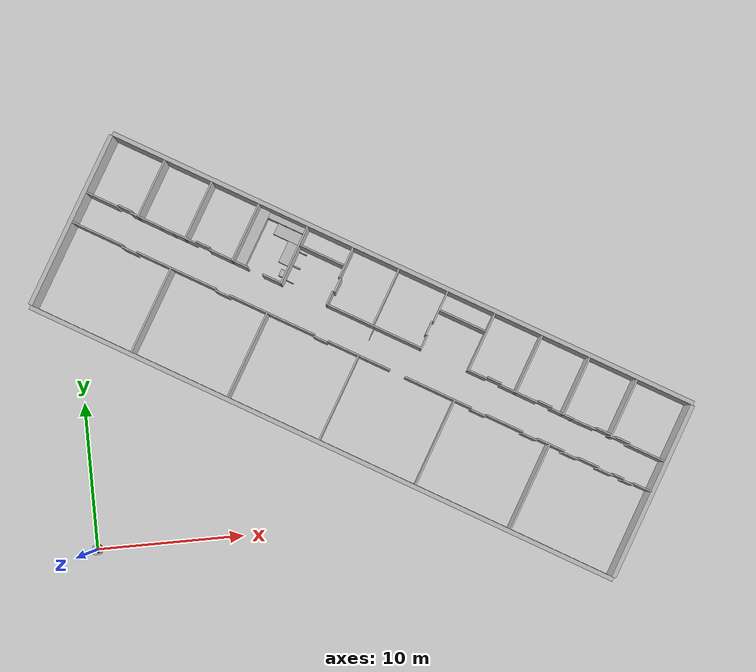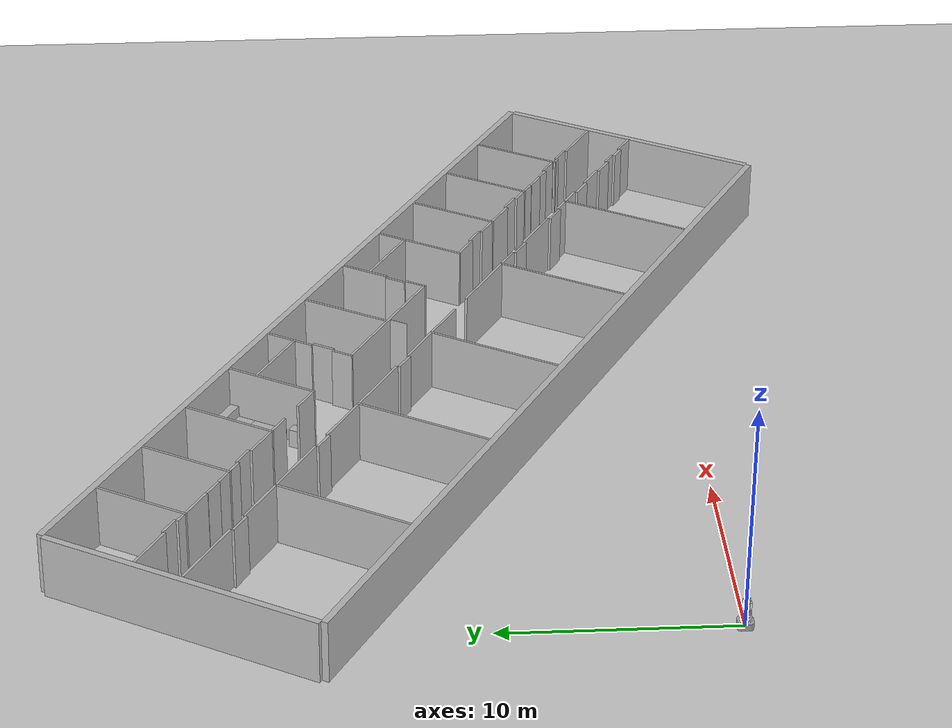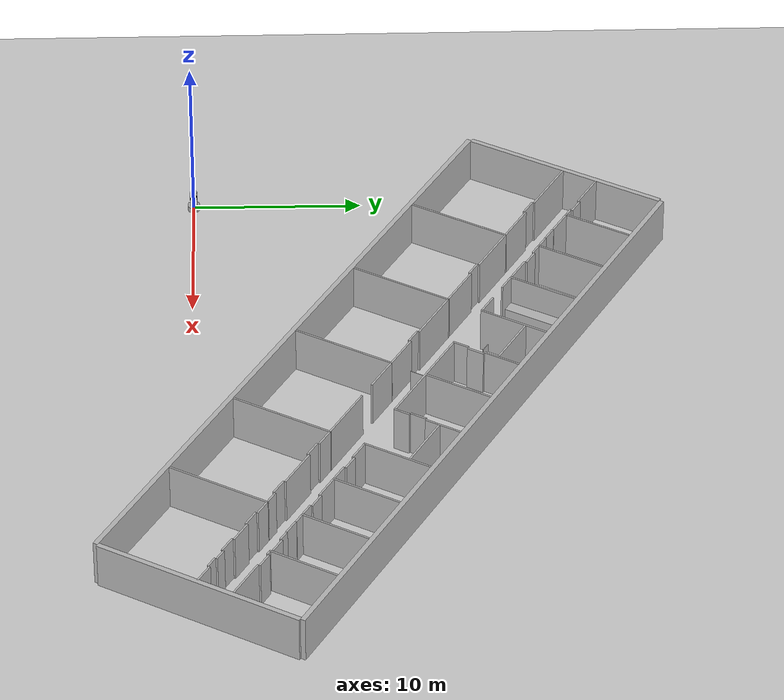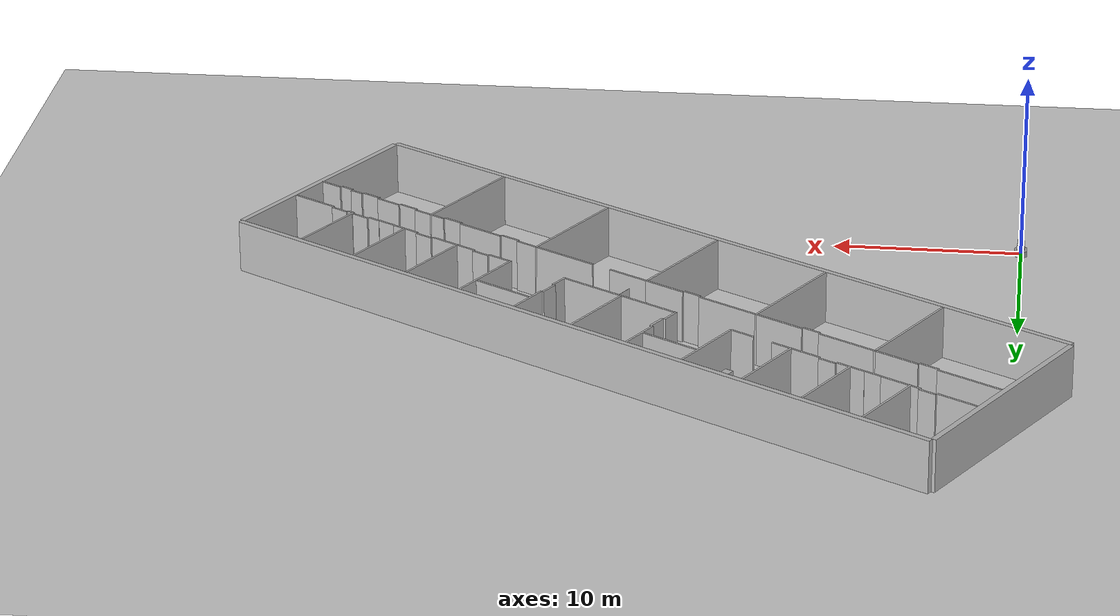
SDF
<?xml version="1.0" ?>
<sdf version="1.4">
  <world name="default">
    <include>
      <uri>model://ground_plane</uri>
    </include>
    <include>
      <uri>model://sun</uri>
    </include>
    <include>
      <uri>model://mild</uri>
    </include>
    <include>
      <uri>model://institut</uri>
      <pose>-2.566437 16.752702 0 0 0 -0.53</pose>
    </include>
  </world>
</sdf>

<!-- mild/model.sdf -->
<sdf version="1.4">
<model name="mild">

    <link name="base_link">
      <pose>0 0 0 0 0 0</pose>
      <inertial>
        <mass>5.67</mass>
        <inertia>
          <ixx>0.07</ixx>
          <iyy>0.08</iyy>
          <izz>0.10</izz>
          <ixy>0</ixy>
          <ixz>0</ixz>
          <iyz>0</iyz>
        </inertia>
      </inertial>
      <collision name="collision">
        <geometry>
         <cylinder>
            <radius>0.38</radius>
            <length>0.485</length>
          </cylinder>
        </geometry>
      </collision>
      <collision name="castor_collision">
        <pose>-0.200 0 -0.12 0 0 0</pose>
        <geometry>
          <sphere>
            <radius>0.04</radius>
          </sphere>
        </geometry>
        <surface>
          <friction>
            <ode>
              <mu>0</mu>
              <mu2>0</mu2>
              <slip1>1.0</slip1>
              <slip2>1.0</slip2>
            </ode>
          </friction>
        </surface>
      </collision>
      <visual name="visual">
        <pose>0 0 -0.2 0 0 -1.570796327</pose>
        <geometry>
        <mesh>
            <uri>model://mild/meshes/mild.dae</uri>
          </mesh>
        </geometry>
      </visual>
     <sensor name="laser" type="ray">
        <pose>0.39 0 -0.12 0 0 0</pose>
        <visualize>1</visualize>
        <ray>
          <scan>
            <horizontal>
              <samples>180</samples>
              <resolution>1.000000</resolution>
              <min_angle>-1.570796327</min_angle>
              <max_angle>1.570796327</max_angle>
            </horizontal>
          </scan>
          <range>
            <min>0.080000</min>
            <max>10</max>
            <resolution>0.010000</resolution>
          </range>
        </ray>

        <plugin name='laser_controller' filename='libgazebo_ros_laser.so'>
          <gaussianNoise>0.005</gaussianNoise>
          <alwaysOn>1</alwaysOn>
          <updateRate>20</updateRate>
          <topicName>scan</topicName>
          <frameName>base_laser</frameName>
        </plugin>
        <update_rate>20</update_rate>
      </sensor>
    </link>

</model>
</sdf>

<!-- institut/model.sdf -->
<sdf version="1.4">
<model name="institut">

    <link name="wall01">
     <pose>21.4 -0.15 1.4 0 0 0</pose>
     <gravity>false</gravity>
      <collision name="collision">
         <geometry>
            <box>
            <size>43.02 0.3 2.8</size>
            </box>
          </geometry>
       </collision>
       <visual name="visual">
           <geometry>
               <box>
            <size>43.02 0.3 2.8</size>
            </box>
          </geometry>
         </visual>
    </link>

     <link name="wall02">
      <gravity>false</gravity>
     <pose>-0.15 6.325 1.4 0 0 0</pose>
      <collision name="collision">
         <geometry>
            <box>
            <size>0.3 12.65 2.8</size>
            </box>
          </geometry>
       </collision>
       <visual name="visual">
           <geometry>
               <box>
            <size>0.3 12.65 2.8</size>
            </box>
          </geometry>
         </visual>
    </link>

    <link name="wall03">
     <gravity>false</gravity>
     <pose>21.4 12.8 1.4 0 0 0</pose>
      <collision name="collision">
         <geometry>
            <box>
            <size>43.02 0.3 2.8</size>
            </box>
          </geometry>
       </collision>
       <visual name="visual">
           <geometry>
               <box>
            <size>43.02 0.3 2.8</size>
            </box>
          </geometry>
         </visual>
    </link>

     <link name="wall04">
      <gravity>false</gravity>
     <pose>42.9 6.325 1.4 0 0 0</pose>
      <collision name="collision">
         <geometry>
            <box>
            <size>0.3 12.65 2.8</size>
            </box>
          </geometry>
       </collision>
       <visual name="visual">
           <geometry>
               <box>
            <size>0.3 12.65 2.8</size>
            </box>
          </geometry>
         </visual>
    </link>

    <link name="wall05">
      <gravity>true</gravity>
     <pose>3.8425 10.525 1.4 0 0 0</pose>
      <collision name="collision">
         <geometry>
            <box>
            <size>0.11 4.25 2.8</size>
            </box>
          </geometry>
       </collision>
       <visual name="visual">
           <geometry>
               <box>
            <size>0.11 4.25 2.8</size>
            </box>
          </geometry>
         </visual>
    </link>

     <link name="wall06">
      <gravity>true</gravity>
     <pose>7.3425 10.525 1.4 0 0 0</pose>
      <collision name="collision">
         <geometry>
            <box>
            <size>0.11 4.25 2.8</size>
            </box>
          </geometry>
       </collision>
       <visual name="visual">
           <geometry>
               <box>
            <size>0.11 4.25 2.8</size>
            </box>
          </geometry>
         </visual>
    </link>

     <link name="wall07">
      <gravity>true</gravity>
     <pose>10.8425 10.525 1.4 0 0 0</pose>
      <collision name="collision">
         <geometry>
            <box>
            <size>0.11 4.25 2.8</size>
            </box>
          </geometry>
       </collision>
       <visual name="visual">
           <geometry>
               <box>
            <size>0.11 4.25 2.8</size>
            </box>
          </geometry>
         </visual>
    </link>

    <link name="wall08">
      <gravity>true</gravity>
     <pose>14.4575 10.525 1.4 0 0 0</pose>
      <collision name="collision">
         <geometry>
            <box>
             <size>0.11 4.25 2.8</size>
            </box>
          </geometry>
       </collision>
       <visual name="visual">
           <geometry>
               <box>
            <size>0.11 4.25 2.8</size>
            </box>
          </geometry>
         </visual>
    </link>

    <link name="wall09">
      <gravity>true</gravity>
     <pose>17.8425 11.54 1.4 0 0 0</pose>
      <collision name="collision">
         <geometry>
            <box>
            <size>0.11 2.24 2.8</size>
            </box>
          </geometry>
       </collision>
       <visual name="visual">
           <geometry>
               <box>
            <size>0.11 2.24 2.8</size>
            </box>
          </geometry>
         </visual>
    </link>

     <link name="wall091">
      <gravity>true</gravity>
     <pose>17.9625 9.92 1.4 0 0 0</pose>
      <collision name="collision">
         <geometry>
            <box>
            <size>0.13 1.05 2.8</size>
            </box>
          </geometry>
       </collision>
       <visual name="visual">
           <geometry>
               <box>
            <size>0.13 1.05 2.8</size>
            </box>
          </geometry>
         </visual>
    </link>

     <link name="wall092">
      <gravity>true</gravity>
     <pose>17.8425 8.9 1.4 0 0 0</pose>
      <collision name="collision">
         <geometry>
            <box>
            <size>0.11 1 2.8</size>
            </box>
          </geometry>
       </collision>
       <visual name="visual">
           <geometry>
               <box>
            <size>0.11 1 2.8</size>
            </box>
          </geometry>
         </visual>
    </link>

    <link name="wall101">
      <gravity>true</gravity>
     <pose>24.8425 8.9 1.4 0 0 0</pose>
      <collision name="collision">
         <geometry>
            <box>
            <size>0.11 1 2.8</size>
            </box>
          </geometry>
       </collision>
       <visual name="visual">
           <geometry>
               <box>
             <size>0.11 1 2.8</size>
            </box>
          </geometry>
         </visual>
    </link>

    <link name="wall102">
      <gravity>true</gravity>
     <pose>24.7325 9.9 1.4 0 0 0</pose>
      <collision name="collision">
         <geometry>
            <box>
            <size>0.11 1 2.8</size>
            </box>
          </geometry>
       </collision>
       <visual name="visual">
           <geometry>
               <box>
             <size>0.11 1 2.8</size>
            </box>
          </geometry>
         </visual>
    </link>

    <link name="wall103">
      <gravity>true</gravity>
     <pose>24.8425 11.525 1.4 0 0 0</pose>
      <collision name="collision">
         <geometry>
            <box>
            <size>0.11 2.25 2.8</size>
            </box>
          </geometry>
       </collision>
       <visual name="visual">
           <geometry>
               <box>
             <size>0.11 2.25 2.8</size>
            </box>
          </geometry>
         </visual>
    </link>

    <link name="wall11">
      <gravity>true</gravity>
     <pose>28.3425 10.525 1.4 0 0 0</pose>
      <collision name="collision">
         <geometry>
            <box>
            <size>0.11 4.25 2.8</size>
            </box>
          </geometry>
       </collision>
       <visual name="visual">
           <geometry>
               <box>
            <size>0.11 4.25 2.8</size>
            </box>
          </geometry>
         </visual>
    </link>

     <link name="wall12">
      <gravity>true</gravity>
     <pose>16.15 11.305 1.4 0 0 0</pose>
      <collision name="collision">
         <geometry>
            <box>
            <size>3.275 0.11 2.8</size>
            </box>
          </geometry>
       </collision>
       <visual name="visual">
           <geometry>
               <box>
            <size>3.275 0.11 2.8</size>
            </box>
          </geometry>
         </visual>
    </link>

     <link name="wall121">
      <gravity>true</gravity>
     <pose>14.7875 11.035 0.255 0 0 0</pose>
      <collision name="collision">
         <geometry>
            <box>
            <size>0.55 0.04 0.51</size>
            </box>
          </geometry>
       </collision>
       <visual name="visual">
           <geometry>
               <box>
            <size>0.55 0.04 0.51</size>
            </box>
          </geometry>
         </visual>
    </link>

    <link name="wall122">
      <gravity>true</gravity>
     <pose>14.7875 10.0 0.255 0 0 0</pose>
      <collision name="collision">
         <geometry>
            <box>
            <size>0.55 0.08 0.51</size>
            </box>
          </geometry>
       </collision>
       <visual name="visual">
           <geometry>
               <box>
            <size>0.55 0.08 0.51</size>
            </box>
          </geometry>
         </visual>
    </link>

    <link name="wall123">
      <gravity>true</gravity>
     <pose>14.7875 8.9 0.255 0 0 0</pose>
      <collision name="collision">
         <geometry>
            <box>
            <size>0.55 0.04 0.51</size>
            </box>
          </geometry>
       </collision>
       <visual name="visual">
           <geometry>
               <box>
            <size>0.55 0.04 0.51</size>
            </box>
          </geometry>
         </visual>
    </link>

    <link name="wall13">
      <gravity>true</gravity>
     <pose>21.3425 8.455 1.4 0 0 0</pose>
      <collision name="collision">
         <geometry>
            <box>
            <size>6.89 0.11 2.8</size>
            </box>
          </geometry>
       </collision>
       <visual name="visual">
           <geometry>
               <box>
            <size>6.89 0.11 2.8</size>
            </box>
          </geometry>
         </visual>
    </link>

      <link name="wall141">
      <gravity>true</gravity>
     <pose>1.15 8.455 1.4 0 0 0</pose>
      <collision name="collision">
         <geometry>
            <box>
            <size>2.3 0.11 2.8</size>
            </box>
          </geometry>
       </collision>
       <visual name="visual">
           <geometry>
               <box>
            <size>2.3 0.11 2.8</size>
            </box>
          </geometry>
         </visual>
    </link>

    <link name="wall142">
      <gravity>true</gravity>
     <pose>2.8 8.565 1.4 0 0 0</pose>
      <collision name="collision">
         <geometry>
            <box>
            <size>1 0.11 2.8</size>
            </box>
          </geometry>
       </collision>
       <visual name="visual">
           <geometry>
               <box>
            <size>1 0.11 2.8</size>
            </box>
          </geometry>
         </visual>
    </link>

     <link name="wall143">
      <gravity>true</gravity>
     <pose>3.51625 8.455 1.4 0 0 0</pose>
      <collision name="collision">
         <geometry>
            <box>
            <size>0.4325 0.11 2.8</size>
            </box>
          </geometry>
       </collision>
       <visual name="visual">
           <geometry>
               <box>
            <size>0.5425 0.11 2.8</size>
            </box>
          </geometry>
         </visual>
    </link>

    <link name="wall151">
      <gravity>true</gravity>
     <pose>4.715 8.455 1.4 0 0 0</pose>
      <collision name="collision">
         <geometry>
            <box>
            <size>1.635 0.11 2.8</size>
            </box>
          </geometry>
       </collision>
       <visual name="visual">
           <geometry>
               <box>
            <size>1.635 0.11 2.8</size>
            </box>
          </geometry>
         </visual>
    </link>

    <link name="wall152">
      <gravity>true</gravity>
     <pose>6.0075 8.440 1.4 0 0 0</pose>
      <collision name="collision">
         <geometry>
            <box>
            <size>0.95 0.11 2.8</size>
            </box>
          </geometry>
       </collision>
       <visual name="visual">
           <geometry>
               <box>
            <size>0.95 0.11 2.8</size>
            </box>
          </geometry>
         </visual>
    </link>

     <link name="wall153">
      <gravity>true</gravity>
     <pose>6.885 8.455 1.4 0 0 0</pose>
      <collision name="collision">
         <geometry>
            <box>
            <size>0.805 0.11 2.8</size>
            </box>
          </geometry>
       </collision>
       <visual name="visual">
           <geometry>
               <box>
            <size>0.805 0.11 2.8</size>
            </box>
          </geometry>
         </visual>
    </link>

    <link name="wall161">
      <gravity>true</gravity>
     <pose>7.755 8.455 1.4 0 0 0</pose>
      <collision name="collision">
         <geometry>
            <box>
            <size>0.715 0.11 2.8</size>
            </box>
          </geometry>
       </collision>
       <visual name="visual">
           <geometry>
               <box>
            <size>0.715 0.11 2.8</size>
            </box>
          </geometry>
         </visual>
    </link>

    <link name="wall162">
      <gravity>true</gravity>
     <pose>8.6125 8.565 1.4 0 0 0</pose>
      <collision name="collision">
         <geometry>
            <box>
            <size>1 0.11 2.8</size>
            </box>
          </geometry>
       </collision>
       <visual name="visual">
           <geometry>
               <box>
            <size>1 0.11 2.8</size>
            </box>
          </geometry>
         </visual>
    </link>

     <link name="wall163">
      <gravity>true</gravity>
     <pose>9.95 8.455 1.4 0 0 0</pose>
      <collision name="collision">
         <geometry>
            <box>
            <size>1.675 0.11 2.8</size>
            </box>
          </geometry>
       </collision>
       <visual name="visual">
           <geometry>
               <box>
            <size>1.675 0.11 2.8</size>
            </box>
          </geometry>
         </visual>
    </link>

    <link name="wall171">
      <gravity>true</gravity>
     <pose>13.7375 8.455 1.4 0 0 0</pose>
      <collision name="collision">
         <geometry>
            <box>
            <size>1.33 0.11 2.8</size>
            </box>
          </geometry>
       </collision>
       <visual name="visual">
           <geometry>
               <box>
            <size>1.33 0.11 2.8</size>
            </box>
          </geometry>
         </visual>
    </link>

     <link name="wall172">
      <gravity>true</gravity>
     <pose>11.435 8.455 1.4 0 0 0</pose>
      <collision name="collision">
         <geometry>
            <box>
            <size>1.075 0.11 2.8</size>
            </box>
          </geometry>
       </collision>
       <visual name="visual">
           <geometry>
               <box>
            <size>1.075 0.11 2.8</size>
            </box>
          </geometry>
         </visual>
    </link>

     <link name="wall18">
      <gravity>true</gravity>
     <pose>31.8375 10.525 1.4 0 0 0</pose>
      <collision name="collision">
         <geometry>
            <box>
            <size>0.11 4.25 2.8</size>
            </box>
          </geometry>
       </collision>
       <visual name="visual">
           <geometry>
               <box>
            <size>0.11 4.25 2.8</size>
            </box>
          </geometry>
         </visual>
    </link>

    <link name="wall19">
      <gravity>true</gravity>
     <pose>35.3325 10.525 1.4 0 0 0</pose>
      <collision name="collision">
         <geometry>
            <box>
            <size>0.11 4.25 2.8</size>
            </box>
          </geometry>
       </collision>
       <visual name="visual">
           <geometry>
               <box>
            <size>0.11 4.25 2.8</size>
            </box>
          </geometry>
         </visual>
    </link>

     <link name="wall20">
      <gravity>true</gravity>
     <pose>38.8275 10.525 1.4 0 0 0</pose>
      <collision name="collision">
         <geometry>
            <box>
            <size>0.11 4.25 2.8</size>
            </box>
          </geometry>
       </collision>
       <visual name="visual">
           <geometry>
               <box>
            <size>0.11 4.25 2.8</size>
            </box>
          </geometry>
         </visual>
    </link>

     <link name="wall21">
      <gravity>true</gravity>
     <pose>26.595 11.305 1.4 0 0 0</pose>
      <collision name="collision">
         <geometry>
            <box>
            <size>3.385 0.11 2.8</size>
            </box>
          </geometry>
       </collision>
       <visual name="visual">
           <geometry>
               <box>
            <size>3.385 0.11 2.8</size>
            </box>
          </geometry>
         </visual>
    </link>

    <link name="wall221">
      <gravity>true</gravity>
     <pose>29.0425 8.455 1.4 0 0 0</pose>
      <collision name="collision">
         <geometry>
            <box>
            <size>1.3 0.11 2.8</size>
            </box>
          </geometry>
       </collision>
       <visual name="visual">
           <geometry>
               <box>
            <size>1.3 0.11 2.8</size>
            </box>
          </geometry>
         </visual>
    </link>

    <link name="wall222">
      <gravity>true</gravity>
     <pose>30.1925 8.565 1.4 0 0 0</pose>
      <collision name="collision">
         <geometry>
            <box>
            <size>1 0.11 2.8</size>
            </box>
          </geometry>
       </collision>
       <visual name="visual">
           <geometry>
               <box>
            <size>1 0.11 2.8</size>
            </box>
          </geometry>
         </visual>
    </link>

     <link name="wall223">
      <gravity>true</gravity>
     <pose>31.2375 8.455 1.4 0 0 0</pose>
      <collision name="collision">
         <geometry>
            <box>
            <size>1.09 0.11 2.8</size>
            </box>
          </geometry>
       </collision>
       <visual name="visual">
           <geometry>
               <box>
            <size>1.09 0.11 2.8</size>
            </box>
          </geometry>
         </visual>
    </link>

    <link name="wall231">
      <gravity>true</gravity>
     <pose>32.6675 8.455 1.4 0 0 0</pose>
      <collision name="collision">
         <geometry>
            <box>
            <size>1.56 0.11 2.8</size>
            </box>
          </geometry>
       </collision>
       <visual name="visual">
           <geometry>
               <box>
            <size>1.56 0.11 2.8</size>
            </box>
          </geometry>
         </visual>
    </link>

    <link name="wall232">
      <gravity>true</gravity>
     <pose>33.9475 8.565 1.4 0 0 0</pose>
      <collision name="collision">
         <geometry>
            <box>
            <size>1 0.11 2.8</size>
            </box>
          </geometry>
       </collision>
       <visual name="visual">
           <geometry>
               <box>
            <size>1 0.11 2.8</size>
            </box>
          </geometry>
         </visual>
    </link>

    <link name="wall233">
      <gravity>true</gravity>
     <pose>34.8625 8.455 1.4 0 0 0</pose>
      <collision name="collision">
         <geometry>
            <box>
            <size>0.83 0.11 2.8</size>
            </box>
          </geometry>
       </collision>
       <visual name="visual">
           <geometry>
               <box>
            <size>0.83 0.11 2.8</size>
            </box>
          </geometry>
         </visual>
    </link>

    <link name="wall241">
      <gravity>true</gravity>
     <pose>35.7125 8.455 1.4 0 0 0</pose>
      <collision name="collision">
         <geometry>
            <box>
            <size>0.66 0.11 2.8</size>
            </box>
          </geometry>
       </collision>
       <visual name="visual">
           <geometry>
               <box>
            <size>0.66 0.11 2.8</size>
            </box>
          </geometry>
         </visual>
    </link>

     <link name="wall242">
      <gravity>true</gravity>
     <pose>36.5425 8.435 1.4 0 0 0</pose>
      <collision name="collision">
         <geometry>
            <box>
            <size>1 0.11 2.8</size>
            </box>
          </geometry>
       </collision>
       <visual name="visual">
           <geometry>
               <box>
            <size>1 0.11 2.8</size>
            </box>
          </geometry>
         </visual>
    </link>

     <link name="wall243">
      <gravity>true</gravity>
     <pose>37.3925 8.455 1.4 0 0 0</pose>
      <collision name="collision">
         <geometry>
            <box>
            <size>0.7 0.11 2.8</size>
            </box>
          </geometry>
       </collision>
       <visual name="visual">
           <geometry>
               <box>
            <size>0.7 0.11 2.8</size>
            </box>
          </geometry>
         </visual>
    </link>

    <link name="wall244">
      <gravity>true</gravity>
     <pose>38.2425 8.565 1.4 0 0 0</pose>
      <collision name="collision">
         <geometry>
            <box>
            <size>1 0.11 2.8</size>
            </box>
          </geometry>
       </collision>
       <visual name="visual">
           <geometry>
               <box>
            <size>1 0.11 2.8</size>
            </box>
          </geometry>
         </visual>
    </link>

     <link name="wall245">
      <gravity>true</gravity>
     <pose>38.7575 8.565 1.4 0 0 0</pose>
      <collision name="collision">
         <geometry>
            <box>
            <size>0.03 0.11 2.8</size>
            </box>
          </geometry>
       </collision>
       <visual name="visual">
           <geometry>
               <box>
            <size>0.03 0.11 2.8</size>
            </box>
          </geometry>
         </visual>
    </link>

      <link name="wall251">
      <gravity>true</gravity>
     <pose>41.46 8.455 1.4 0 0 0</pose>
      <collision name="collision">
         <geometry>
            <box>
            <size>2.6 0.11 2.8</size>
            </box>
          </geometry>
       </collision>
       <visual name="visual">
           <geometry>
               <box>
            <size>2.6 0.11 2.8</size>
            </box>
          </geometry>
         </visual>
    </link>

     <link name="wall252">
      <gravity>true</gravity>
     <pose>39.66 8.565 1.4 0 0 0</pose>
      <collision name="collision">
         <geometry>
            <box>
            <size>1 0.11 2.8</size>
            </box>
          </geometry>
       </collision>
       <visual name="visual">
           <geometry>
               <box>
            <size>1 0.11 2.8</size>
            </box>
          </geometry>
         </visual>
    </link>

    <link name="wall253">
      <gravity>true</gravity>
     <pose>39.01875 8.455 1.4 0 0 0</pose>
      <collision name="collision">
         <geometry>
            <box>
            <size>0.2825 0.11 2.8</size>
            </box>
          </geometry>
       </collision>
       <visual name="visual">
           <geometry>
               <box>
            <size>0.2825 0.11 2.8</size>
            </box>
          </geometry>
         </visual>
    </link>

    <link name="wall261">
      <gravity>true</gravity>
     <pose>1.85 6.245 1.4 0 0 0</pose>
      <collision name="collision">
         <geometry>
            <box>
            <size>3.7 0.11 2.8</size>
            </box>
          </geometry>
       </collision>
       <visual name="visual">
           <geometry>
               <box>
            <size>3.7 0.11 2.8</size>
            </box>
          </geometry>
         </visual>
    </link>

    <link name="wall262">
      <gravity>true</gravity>
     <pose>4.25 6.135 1.4 0 0 0</pose>
      <collision name="collision">
         <geometry>
            <box>
            <size>1.1 0.11 2.8</size>
            </box>
          </geometry>
       </collision>
       <visual name="visual">
           <geometry>
               <box>
            <size>1.1 0.11 2.8</size>
            </box>
          </geometry>
         </visual>
    </link>

    <link name="wall263">
      <gravity>true</gravity>
     <pose>6.06875 6.245 1.4 0 0 0</pose>
      <collision name="collision">
         <geometry>
            <box>
            <size>2.5375 0.11 2.8</size>
            </box>
          </geometry>
       </collision>
       <visual name="visual">
           <geometry>
               <box>
            <size>2.5375 0.11 2.8</size>
            </box>
          </geometry>
         </visual>
    </link>

      <link name="wall27">
      <gravity>true</gravity>
     <pose>7.3425 3.15 1.4 0 0 0</pose>
      <collision name="collision">
         <geometry>
            <box>
            <size>0.11 6.3 2.8</size>
            </box>
          </geometry>
       </collision>
       <visual name="visual">
           <geometry>
               <box>
            <size>0.11 6.3 2.8</size>
            </box>
          </geometry>
         </visual>
    </link>

      <link name="wall28">
      <gravity>true</gravity>
     <pose>14.4575 3.15 1.4 0 0 0</pose>
      <collision name="collision">
         <geometry>
            <box>
             <size>0.11 6.3 2.8</size>
            </box>
          </geometry>
       </collision>
       <visual name="visual">
           <geometry>
               <box>
            <size>0.11 6.3 2.8</size>
            </box>
          </geometry>
         </visual>
    </link>

    <link name="wall291">
      <gravity>true</gravity>
     <pose>9.0225 6.245 1.4 0 0 0</pose>
      <collision name="collision">
         <geometry>
            <box>
            <size>3.2875 0.11 2.8</size>
            </box>
          </geometry>
       </collision>
       <visual name="visual">
           <geometry>
               <box>
            <size>3.2875 0.11 2.8</size>
            </box>
          </geometry>
         </visual>
    </link>

    <link name="wall292">
      <gravity>true</gravity>
     <pose>11.16625 6.135 1.4 0 0 0</pose>
      <collision name="collision">
         <geometry>
            <box>
            <size>1 0.11 2.8</size>
            </box>
          </geometry>
       </collision>
       <visual name="visual">
           <geometry>
               <box>
            <size>1 0.11 2.8</size>
            </box>
          </geometry>
         </visual>
    </link>

     <link name="wall293">
      <gravity>true</gravity>
     <pose>13.04125 6.245 1.4 0 0 0</pose>
      <collision name="collision">
         <geometry>
            <box>
            <size>2.75 0.11 2.8</size>
            </box>
          </geometry>
       </collision>
       <visual name="visual">
           <geometry>
               <box>
            <size>2.75 0.11 2.8</size>
            </box>
          </geometry>
         </visual>
    </link>

    <link name="wall30">
      <gravity>true</gravity>
     <pose>21.245 3.15 1.4 0 0 0</pose>
      <collision name="collision">
         <geometry>
            <box>
             <size>0.11 6.3 2.8</size>
            </box>
          </geometry>
       </collision>
       <visual name="visual">
           <geometry>
               <box>
            <size>0.11 6.3 2.8</size>
            </box>
          </geometry>
         </visual>
    </link>

     <link name="wall31">
      <gravity>true</gravity>
     <pose>28.3425 3.15 1.4 0 0 0</pose>
      <collision name="collision">
         <geometry>
            <box>
             <size>0.11 6.3 2.8</size>
            </box>
          </geometry>
       </collision>
       <visual name="visual">
           <geometry>
               <box>
            <size>0.11 6.3 2.8</size>
            </box>
          </geometry>
         </visual>
    </link>

     <link name="wall32">
      <gravity>true</gravity>
     <pose>35.3325 3.15 1.4 0 0 0</pose>
      <collision name="collision">
         <geometry>
            <box>
             <size>0.11 6.3 2.8</size>
            </box>
          </geometry>
       </collision>
       <visual name="visual">
           <geometry>
               <box>
            <size>0.11 6.3 2.8</size>
            </box>
          </geometry>
         </visual>
    </link>

    <link name="wall331">
      <gravity>true</gravity>
     <pose>16.225 6.245 1.4 0 0 0</pose>
      <collision name="collision">
         <geometry>
            <box>
            <size>3.4775 0.11 2.8</size>
            </box>
          </geometry>
       </collision>
       <visual name="visual">
           <geometry>
               <box>
            <size>3.4775 0.11 2.8</size>
            </box>
          </geometry>
         </visual>
    </link>

     <link name="wall332">
      <gravity>true</gravity>
     <pose>20.11875 6.245 1.4 0 0 0</pose>
      <collision name="collision">
         <geometry>
            <box>
            <size>2.31 0.11 2.8</size>
            </box>
          </geometry>
       </collision>
       <visual name="visual">
           <geometry>
               <box>
            <size>2.31 0.11 2.8</size>
            </box>
          </geometry>
         </visual>
    </link>

    <link name="wall333">
      <gravity>true</gravity>
     <pose>18.46375 6.135 1.4 0 0 0</pose>
      <collision name="collision">
         <geometry>
            <box>
            <size>1 0.11 2.8</size>
            </box>
          </geometry>
       </collision>
       <visual name="visual">
           <geometry>
               <box>
            <size>1 0.11 2.8</size>
            </box>
          </geometry>
         </visual>
    </link>

    <link name="wall341">
      <gravity>true</gravity>
     <pose>22.42625 6.245 1.4 0 0 0</pose>
      <collision name="collision">
         <geometry>
            <box>
            <size>2.275 0.11 2.8</size>
            </box>
          </geometry>
       </collision>
       <visual name="visual">
           <geometry>
               <box>
            <size>2.275 0.11 2.8</size>
            </box>
          </geometry>
         </visual>
    </link>

    <link name="wall343">
      <gravity>true</gravity>
     <pose>26.495 6.245 1.4 0 0 0</pose>
      <collision name="collision">
         <geometry>
            <box>
            <size>3.6625 0.11 2.8</size>
            </box>
          </geometry>
       </collision>
       <visual name="visual">
           <geometry>
               <box>
            <size>3.6625 0.11 2.8</size>
            </box>
          </geometry>
         </visual>
    </link>

    <link name="wall351">
      <gravity>true</gravity>
     <pose>28.98125 6.245 1.4 0 0 0</pose>
      <collision name="collision">
         <geometry>
            <box>
            <size>1.2 0.11 2.8</size>
            </box>
          </geometry>
       </collision>
       <visual name="visual">
           <geometry>
               <box>
            <size>1.2 0.11 2.8</size>
            </box>
          </geometry>
         </visual>
    </link>

     <link name="wall352">
      <gravity>true</gravity>
     <pose>30.13125 6.135 1.4 0 0 0</pose>
      <collision name="collision">
         <geometry>
            <box>
            <size>1.1 0.11 2.8</size>
            </box>
          </geometry>
       </collision>
       <visual name="visual">
           <geometry>
               <box>
            <size>1.1 0.11 2.8</size>
            </box>
          </geometry>
         </visual>
    </link>

    <link name="wall353">
      <gravity>true</gravity>
     <pose>32.02125 6.245 1.4 0 0 0</pose>
      <collision name="collision">
         <geometry>
            <box>
            <size>2.68 0.11 2.8</size>
            </box>
          </geometry>
       </collision>
       <visual name="visual">
           <geometry>
               <box>
            <size>2.68 0.11 2.8</size>
            </box>
          </geometry>
         </visual>
    </link>

    <link name="wall354">
      <gravity>true</gravity>
     <pose>33.91125 6.135 1.4 0 0 0</pose>
      <collision name="collision">
         <geometry>
            <box>
            <size>1.1 0.11 2.8</size>
            </box>
          </geometry>
       </collision>
       <visual name="visual">
           <geometry>
               <box>
            <size>1.1 0.11 2.8</size>
            </box>
          </geometry>
         </visual>
    </link>

     <link name="wall355">
      <gravity>true</gravity>
     <pose>34.88125 6.245 1.4 0 0 0</pose>
      <collision name="collision">
         <geometry>
            <box>
            <size>0.84 0.11 2.8</size>
            </box>
          </geometry>
       </collision>
       <visual name="visual">
           <geometry>
               <box>
            <size>0.84 0.11 2.8</size>
            </box>
          </geometry>
         </visual>
    </link>

    <link name="wall361">
      <gravity>true</gravity>
     <pose>42.17625 6.245 1.4 0 0 0</pose>
      <collision name="collision">
         <geometry>
            <box>
            <size>1.27 0.11 2.8</size>
            </box>
          </geometry>
       </collision>
       <visual name="visual">
           <geometry>
               <box>
            <size>1.27 0.11 2.8</size>
            </box>
          </geometry>
         </visual>
    </link>

    <link name="wall362">
      <gravity>true</gravity>
     <pose>41.16625 6.135 1.4 0 0 0</pose>
      <collision name="collision">
         <geometry>
            <box>
            <size>0.75 0.11 2.8</size>
            </box>
          </geometry>
       </collision>
       <visual name="visual">
           <geometry>
               <box>
            <size>0.75 0.11 2.8</size>
            </box>
          </geometry>
         </visual>
    </link>

     <link name="wall363">
      <gravity>true</gravity>
     <pose>40.42125 6.245 1.4 0 0 0</pose>
      <collision name="collision">
         <geometry>
            <box>
            <size>0.74 0.11 2.8</size>
            </box>
          </geometry>
       </collision>
       <visual name="visual">
           <geometry>
               <box>
            <size>0.74 0.11 2.8</size>
            </box>
          </geometry>
         </visual>
    </link>

     <link name="wall364">
      <gravity>true</gravity>
     <pose>39.50125 6.135 1.4 0 0 0</pose>
      <collision name="collision">
         <geometry>
            <box>
            <size>1.1 0.11 2.8</size>
            </box>
          </geometry>
       </collision>
       <visual name="visual">
           <geometry>
               <box>
            <size>1.1 0.11 2.8</size>
            </box>
          </geometry>
         </visual>
    </link>

    <link name="wall365">
      <gravity>true</gravity>
     <pose>38.22625 6.245 1.4 0 0 0</pose>
      <collision name="collision">
         <geometry>
            <box>
            <size>1.45 0.11 2.8</size>
            </box>
          </geometry>
       </collision>
       <visual name="visual">
           <geometry>
               <box>
            <size>1.45 0.11 2.8</size>
            </box>
          </geometry>
         </visual>
    </link>

     <link name="wall366">
      <gravity>true</gravity>
     <pose>36.95125 6.135 1.4 0 0 0</pose>
      <collision name="collision">
         <geometry>
            <box>
            <size>1.1 0.11 2.8</size>
            </box>
          </geometry>
       </collision>
       <visual name="visual">
           <geometry>
               <box>
            <size>1.1 0.11 2.8</size>
            </box>
          </geometry>
         </visual>
    </link>

    <link name="wall367">
      <gravity>true</gravity>
     <pose>35.8825 6.245 1.4 0 0 0</pose>
      <collision name="collision">
         <geometry>
            <box>
            <size>1.0375 0.11 2.8</size>
            </box>
          </geometry>
       </collision>
       <visual name="visual">
           <geometry>
               <box>
            <size>1.0375 0.11 2.8</size>
            </box>
          </geometry>
         </visual>
    </link>

    <link name="wall37">
      <gravity>true</gravity>
     <pose>21.4 8 1.4 0 0 0</pose>
      <collision name="collision">
         <geometry>
            <box>
             <size>0.01 0.89 2.8</size>
            </box>
          </geometry>
       </collision>
       <visual name="visual">
           <geometry>
               <box>
            <size>0.01 0.89 2.8</size>
            </box>
          </geometry>
         </visual>
    </link>
    <link name="wall38">
      <gravity>true</gravity>
     <pose>21.245 10.580 1.4 0 0 0</pose>
      <collision name="collision">
         <geometry>
            <box>
            <size>0.11 4.14 2.8</size>
            </box>
          </geometry>
       </collision>
       <visual name="visual">
           <geometry>
               <box>
            <size>0.11 4.14 2.8</size>
            </box>
          </geometry>
         </visual>
    </link>

    <link name="wall39">
      <gravity>true</gravity>
     <pose>11.2675 10.580 0.5 0 0 0</pose>
      <collision name="collision">
         <geometry>
            <box>
            <size>0.74 4.14 1</size>
            </box>
          </geometry>
       </collision>
       <visual name="visual">
           <geometry>
               <box>
            <size>0.74 4.14 1</size>
            </box>
          </geometry>
         </visual>
    </link>

    <link name="wall40">
      <gravity>true</gravity>
     <pose>13.02 12.41 0.5 0 0 0</pose>
      <collision name="collision">
         <geometry>
            <box>
            <size>2.765 0.42 1</size>
            </box>
          </geometry>
       </collision>
       <visual name="visual">
           <geometry>
               <box>
            <size>2.765 0.42 1</size>
            </box>
          </geometry>
         </visual>
    </link>

     <link name="wall41">
      <gravity>true</gravity>
     <pose>13.4025 11.8 0.25 0 0 0</pose>
      <collision name="collision">
         <geometry>
            <box>
            <size>2 0.8 0.5</size>
            </box>
          </geometry>
       </collision>
       <visual name="visual">
           <geometry>
               <box>
            <size>2 0.8 0.5</size>
            </box>
          </geometry>
         </visual>
    </link>

    <link name="wall42">
      <gravity>true</gravity>
     <pose>13.9625 10.61 0.25 0 0 0</pose>
      <collision name="collision">
         <geometry>
            <box>
            <size>0.88 1.58 0.5</size>
            </box>
          </geometry>
       </collision>
       <visual name="visual">
           <geometry>
               <box>
            <size>0.88 1.58 0.5</size>
            </box>
          </geometry>
         </visual>
    </link>

    <link name="wall43">
      <gravity>true</gravity>
     <pose>14.1725 9.2 0.425 0 0 0</pose>
      <collision name="collision">
         <geometry>
            <box>
            <size>0.46 0.5 0.85</size>
            </box>
          </geometry>
       </collision>
       <visual name="visual">
           <geometry>
               <box>
            <size>0.46 0.5 0.85</size>
            </box>
          </geometry>
         </visual>
    </link>

  </model>
</sdf>
